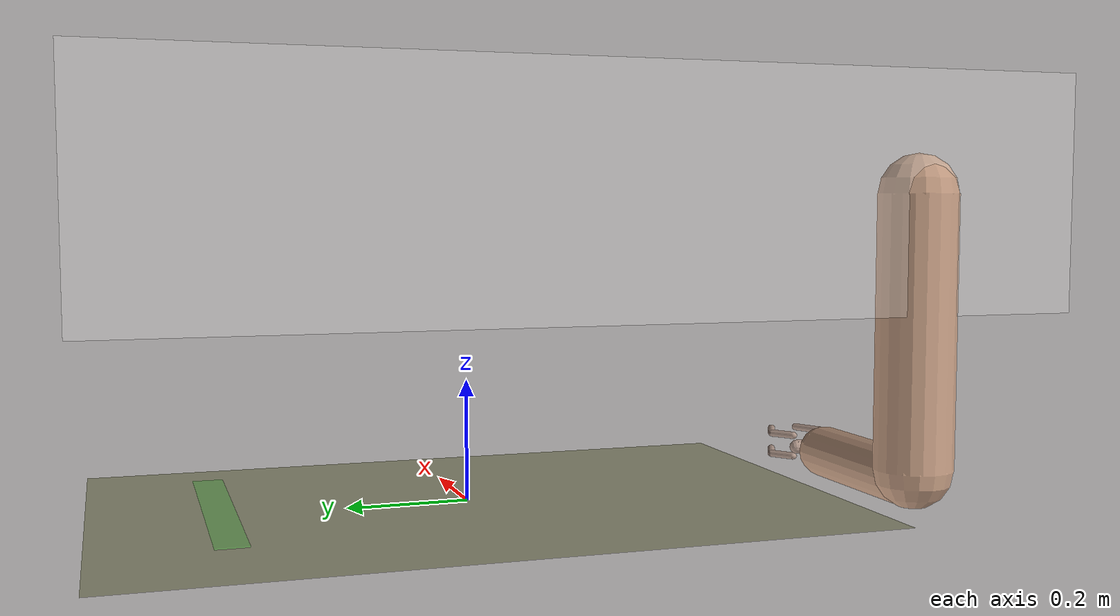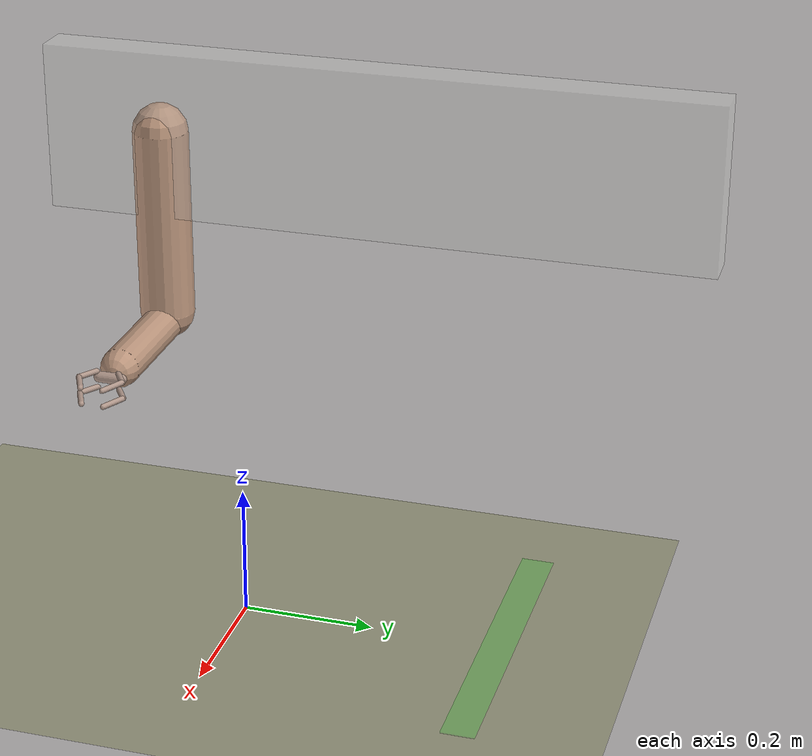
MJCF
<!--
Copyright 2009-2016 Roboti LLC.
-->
<mujoco model="arm_claw (v1.31)">
	<compiler 	inertiafromgeom="true"
				angle="radian"/>

	<size 	nuser_jnt="1"
			nuser_geom="1"/>

	<option	timestep="0.005"
			gravity="0 0 -2"
			viscosity="0"
			iterations="20"/>

	<asset>
		<material name="MatGnd" specular=".3" shininess=".3" reflectance="0.3" rgba=".5 .55 .5 1"/>
	</asset>

	<default>
		<joint limited="true" damping="1" stiffness="0" armature=".1" user="0"/>
		<geom solref="0.008 1" solimp="0.95 0.95 0.01" margin="0.001" user="0"/>
		<motor ctrllimited="true" ctrlrange="-1 1"/>
		<position ctrllimited="false"/>

		<default class='0'>
			<geom friction="1 0.005 0.001" rgba=".75 .6 .5 1" contype="1" conaffinity="0"/>
		</default>

		<default class='1'>
			<geom friction="1 0.005 0.001" rgba=".7 .6 .55 1" contype="1" conaffinity="0"/>
		</default>

		<default class='arm'>
			<joint damping="5"/>
		</default>
	</default>

	<worldbody>
		<light directional="true" cutoff="40" exponent="10" diffuse=".4 .4 .4" specular=".7 .7 .7" pos="0 0 1.5" dir="0 0 -1"/>
		<geom name="tableTop" material="MatGnd" type="plane" pos="0 0 0" size="0.4 0.6 0.5" rgba=".6 .6 .5 1" contype="1" conaffinity="1"/>

		<!--  ================= ARM ================= /-->
		<body name="board1" pos="-0.7 0 0.5" quat="0 0 0 0">

			<geom type="box" rgba="1 1 1 0.15" size="0.035 0.6 0.15" class="0"/>
			<body name="upperarm" pos="0 -0.4 0">
				<geom class="0" type="capsule" fromto="0 0 0 0 0 -0.345" size="0.05"/>
				<joint name='slidex1' type='slide' axis='0 1 0' range='-0.1 1'/>
				<joint name='slidey1' type='slide' axis='0 0 1' range='-0.1 0.2'/>
				<joint name='slidez1' type='slide' axis='1 0 0' range='0 0.5'/>
				<body name="forearm" pos="0 0 -0.36">
					<geom class="0" type="capsule" fromto="0 0 0 0.225 0 0" size="0.035"/>
		<!--  ================= Palm ================= /-->

					<body name="claw" pos="0.27 0 0" quat="0 1 0 0">
						<geom class="1" name="Geomclaw" type="capsule" fromto="0 .02 0 0 -.02 0" size="0.01" />
						<joint name="w_abduction" type="hinge" pos="0 0 0" axis="0 0 1" range="-.5 .5" user="006"/>
						<joint name="w_flexion" type="hinge" pos="0 0 0" axis="0 -1 0" range="-1.05 1.05" user="007"/>

						<body name="rightclaw" pos=".01 -.02 0" >
							<geom name="rightclaw_it" class="1" type="capsule" fromto="0 0 0.015 .03 -.02 0.015" 	size="0.005" />
							<geom name="rightclaw_ot" class="1" type="capsule" fromto=".03 -.02 0.015 .07 0 0.015" size="0.005" />
							<geom name="rightclaw_ib" class="1" type="capsule" fromto="0 0 -0.015 .03 -.02 -0.015" 	size="0.005" />
							<geom name="rightclaw_ob" class="1" type="capsule" fromto=".03 -.02 -0.015 .07 0 -0.015" size="0.005" />
						</body>

						<body name="leftclaw" pos=".01 .02 0">
							<geom name="leftclaw_it" class="1" type="capsule" fromto="0 0 0.015 .03 .02 0.015" 	size="0.005" />
							<geom name="leftclaw_ot" class="1" type="capsule" fromto=".03 .02 0.015 .07 0 0.015" size="0.005" />
							<geom name="leftclaw_ib" class="1" type="capsule" fromto="0 0 -0.015 .03 .02 -0.015" 	size="0.005" />
							<geom name="leftclaw_ob" class="1" type="capsule" fromto=".03 .02 -0.015 .07 0 -0.015" size="0.005" />

						</body>

					</body>

				</body>

			</body>
		</body>

		<!--  ================= OBJECT ================= pos="0 -0.4 0.06" quat="0 0 0 0" /-->

		<body name="goal" pos="0 0.4 0.01" quat="0 0 0 0" >
			<geom  type="box" rgba="0 1 0 0.1" size="0.25 0.025 0.001" user="1" contype="0" conaffinity="1"/>
			<joint name="fr2" type="free" limited='false' damping="2" armature="0"/>
		</body>

	</worldbody>

	<actuator>
		<!--  ================= Torque actuators ================= /-->

		<!--  ================= Position actuators ================= /-->

		<position joint="slidex1" name="sliderx1" kp="10" ctrlrange="-1 1"/>
		<position joint="slidey1" name="slidery1" kp="10" ctrlrange="-1 1"/>
		<position joint="slidez1" name="sliderz1" kp="10" ctrlrange="-1 1"/>

	</actuator>

</mujoco>
